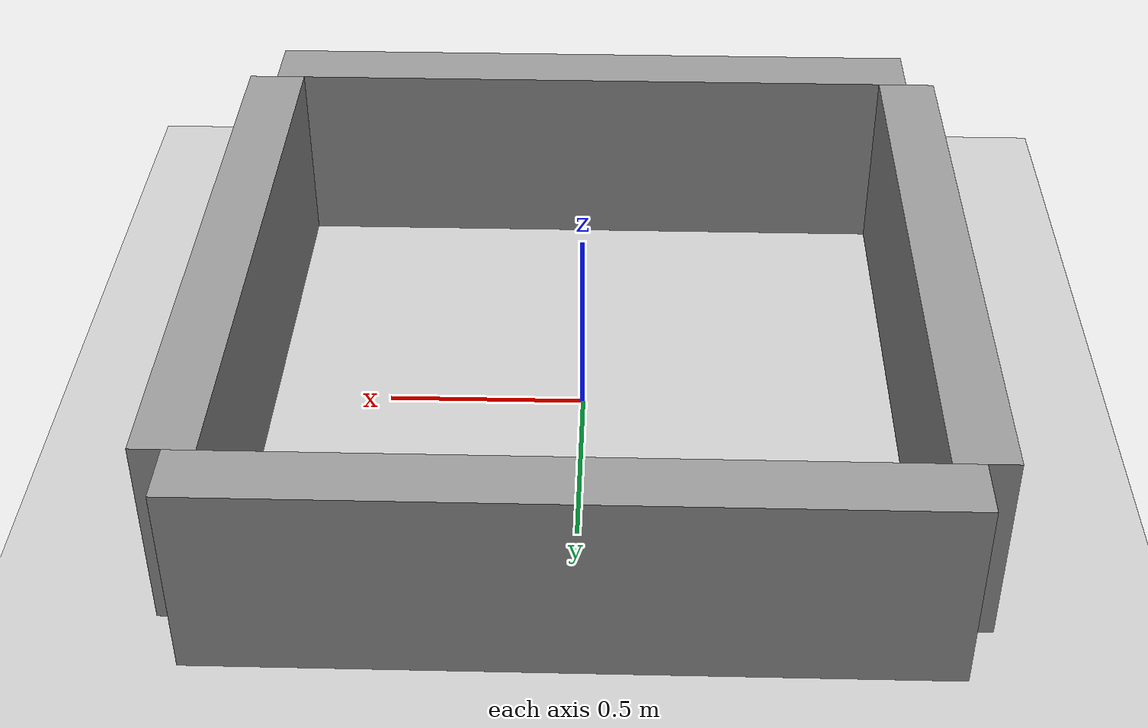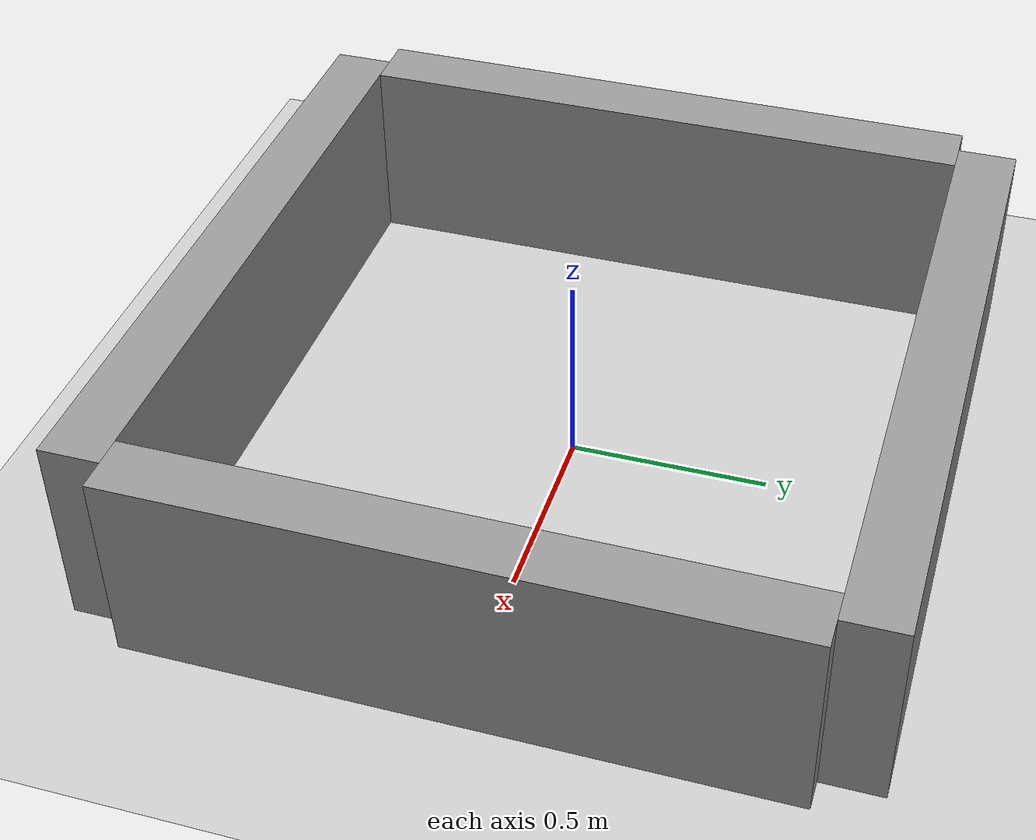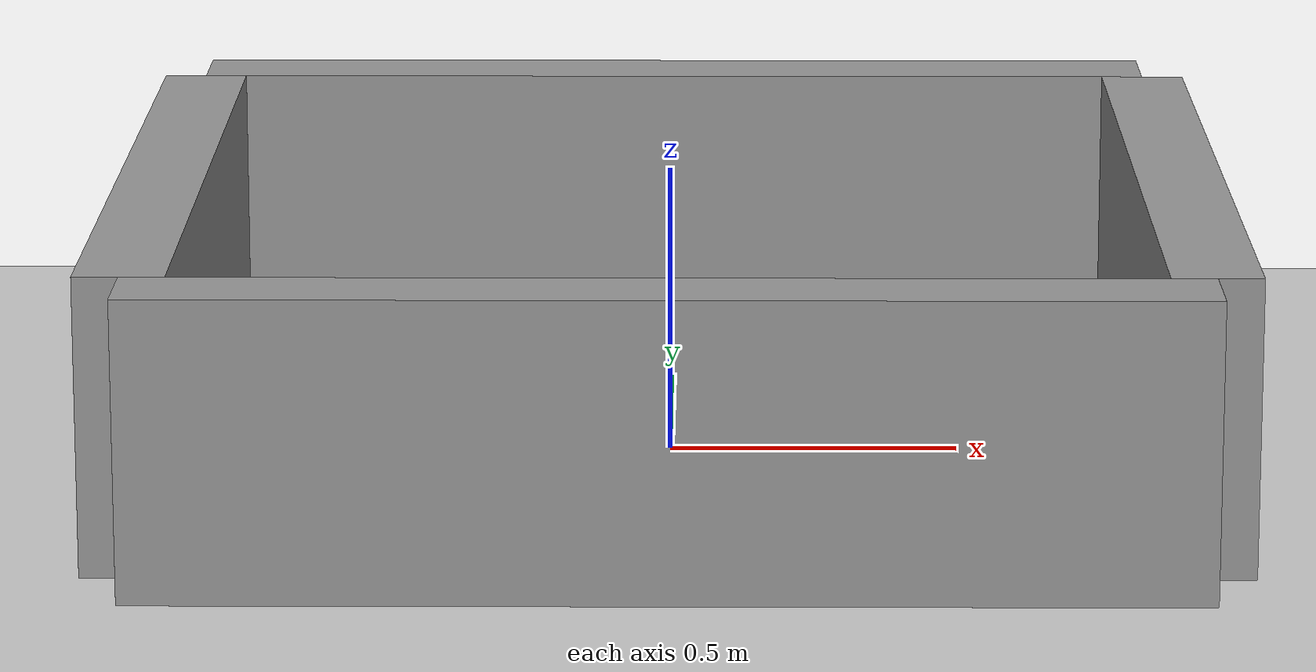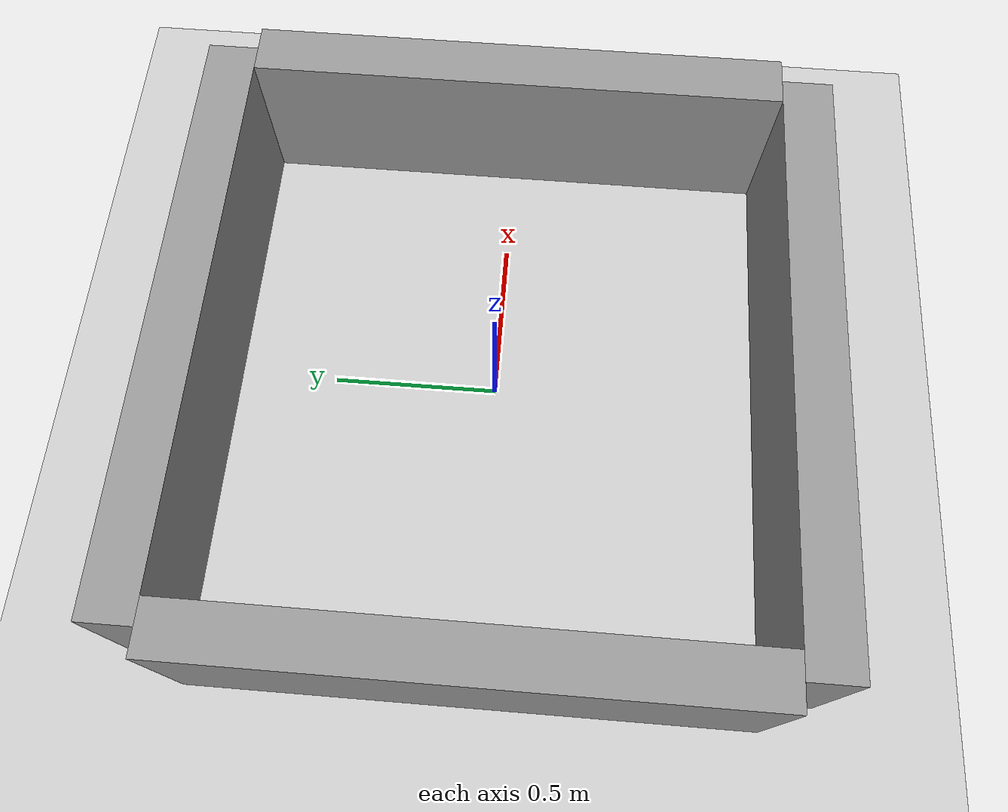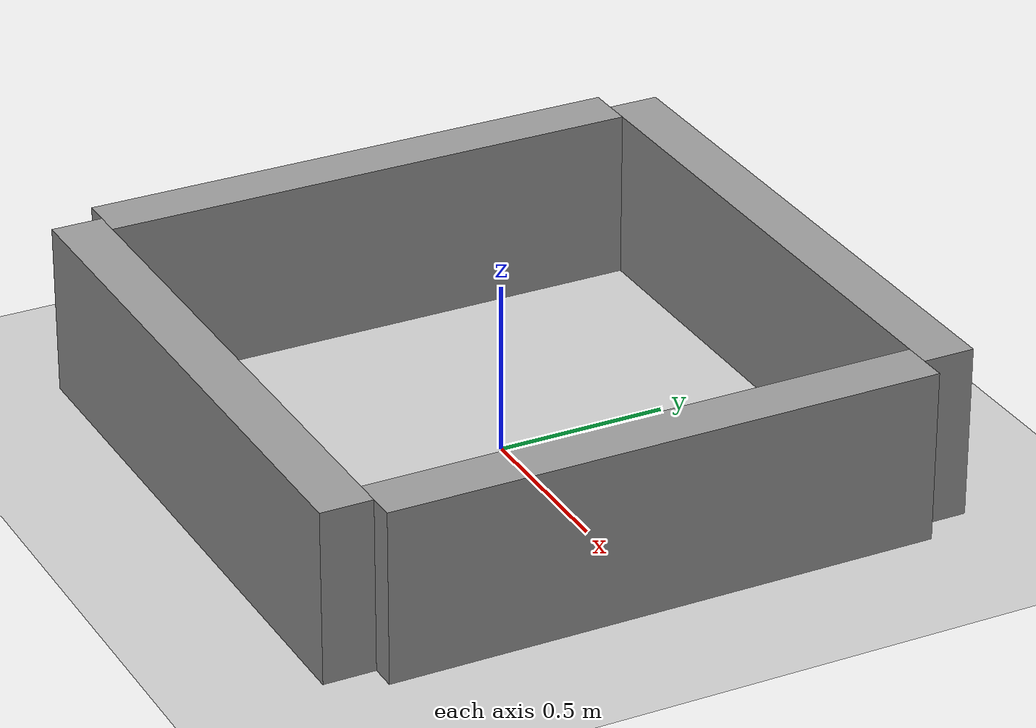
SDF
<?xml version='1.0'?>
<sdf version='1.7'>
  <world name='empty_room_world'>

    <!-- Physics & scene defaults -->
    <physics name='default_physics' default='0' type='ode'>
      <max_step_size>0.001</max_step_size>
      <real_time_factor>1</real_time_factor>
      <real_time_update_rate>1000</real_time_update_rate>
    </physics>

    <scene>
      <ambient>0.4 0.4 0.4 1</ambient>
      <background>0.7 0.7 0.7 1</background>
      <shadows>true</shadows>
    </scene>

    <include><uri>model://sun</uri></include>
    <include><uri>model://ground_plane</uri></include>

    <!-- Our empty room, dropped exactly at origin -->
    <include>
      <uri>model://empty_room_1x1</uri>
      <pose>0 0 0 0 0 0</pose>
    </include>

    <!-- Camera angle for the GUI -->
    <gui fullscreen='0'>
      <camera name='user_camera'>
        <pose>3.0 -3.0 2.5 0 0.5 2.35</pose>
      </camera>
    </gui>

  </world>
</sdf>

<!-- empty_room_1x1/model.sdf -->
<sdf version='1.7'>
  <model name='empty_room_1x1'>
    <static>true</static>
    <pose>0 0 0 0 0 0</pose>

    <!-- North wall (+Y side), runs along X axis -->
    <link name='wall_north'>
      <pose>0 0.875 0 0 0 0</pose>
      <collision name='collision'>
        <pose>0 0 0.25 0 0 0</pose>
        <geometry><box><size>1.75 0.15 0.5</size></box></geometry>
      </collision>
      <visual name='visual'>
        <pose>0 0 0.25 0 0 0</pose>
        <geometry><box><size>1.75 0.15 0.5</size></box></geometry>
        <material>
          <script>
            <uri>file://media/materials/scripts/gazebo.material</uri>
            <name>Gazebo/Grey</name>
          </script>
        </material>
      </visual>
    </link>

    <!-- South wall (-Y side) -->
    <link name='wall_south'>
      <pose>0 -0.875 0 0 0 0</pose>
      <collision name='collision'>
        <pose>0 0 0.25 0 0 0</pose>
        <geometry><box><size>1.75 0.15 0.5</size></box></geometry>
      </collision>
      <visual name='visual'>
        <pose>0 0 0.25 0 0 0</pose>
        <geometry><box><size>1.75 0.15 0.5</size></box></geometry>
        <material>
          <script>
            <uri>file://media/materials/scripts/gazebo.material</uri>
            <name>Gazebo/Grey</name>
          </script>
        </material>
      </visual>
    </link>

    <!-- East wall (+X side), runs along Y axis -->
    <link name='wall_east'>
      <pose>0.875 0 0 0 0 0</pose>
      <collision name='collision'>
        <pose>0 0 0.25 0 0 0</pose>
        <geometry><box><size>0.15 1.6 0.5</size></box></geometry>
      </collision>
      <visual name='visual'>
        <pose>0 0 0.25 0 0 0</pose>
        <geometry><box><size>0.15 1.6 0.5</size></box></geometry>
        <material>
          <script>
            <uri>file://media/materials/scripts/gazebo.material</uri>
            <name>Gazebo/Grey</name>
          </script>
        </material>
      </visual>
    </link>

    <!-- West wall (-X side) -->
    <link name='wall_west'>
      <pose>-0.875 0 0 0 0 0</pose>
      <collision name='collision'>
        <pose>0 0 0.25 0 0 0</pose>
        <geometry><box><size>0.15 1.6 0.5</size></box></geometry>
      </collision>
      <visual name='visual'>
        <pose>0 0 0.25 0 0 0</pose>
        <geometry><box><size>0.15 1.6 0.5</size></box></geometry>
        <material>
          <script>
            <uri>file://media/materials/scripts/gazebo.material</uri>
            <name>Gazebo/Grey</name>
          </script>
        </material>
      </visual>
    </link>

  </model>
</sdf>
